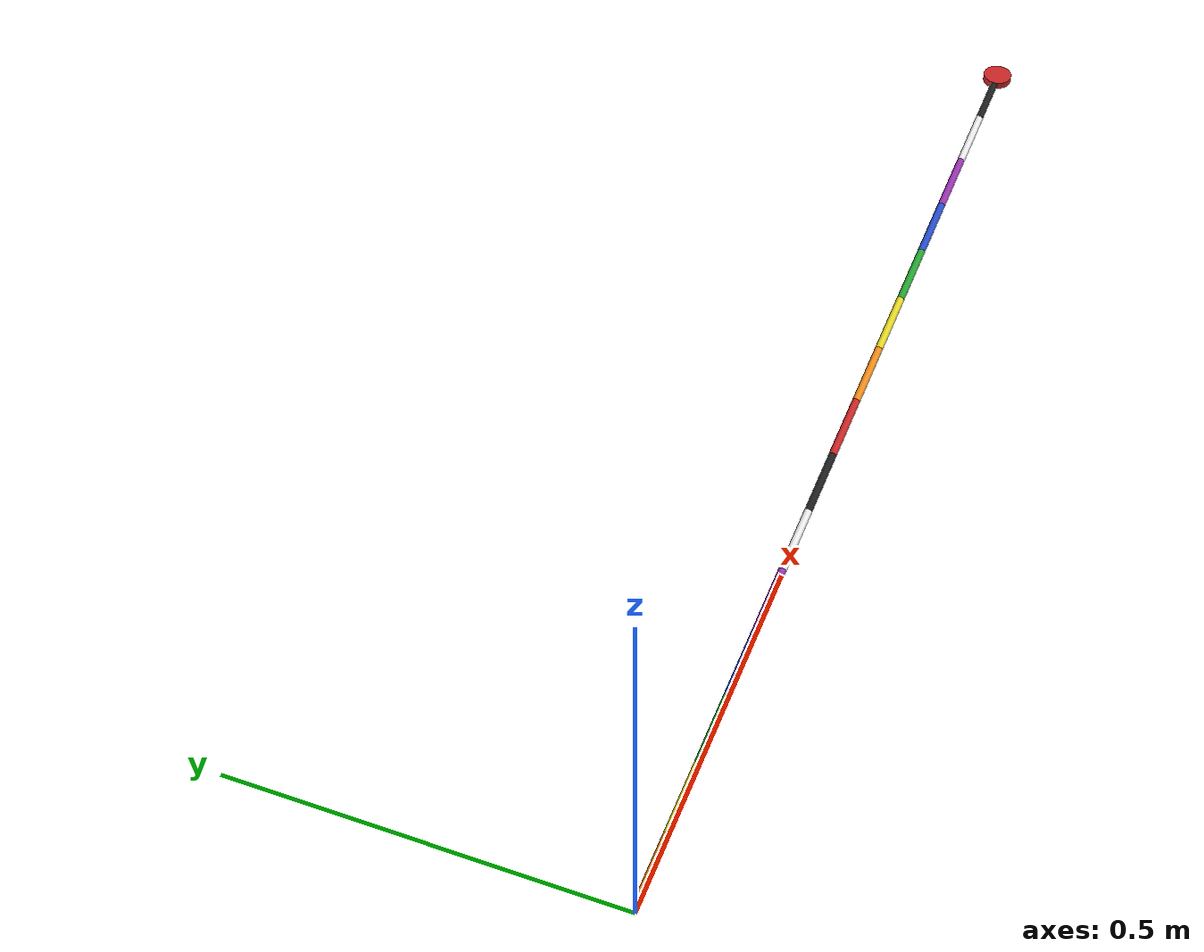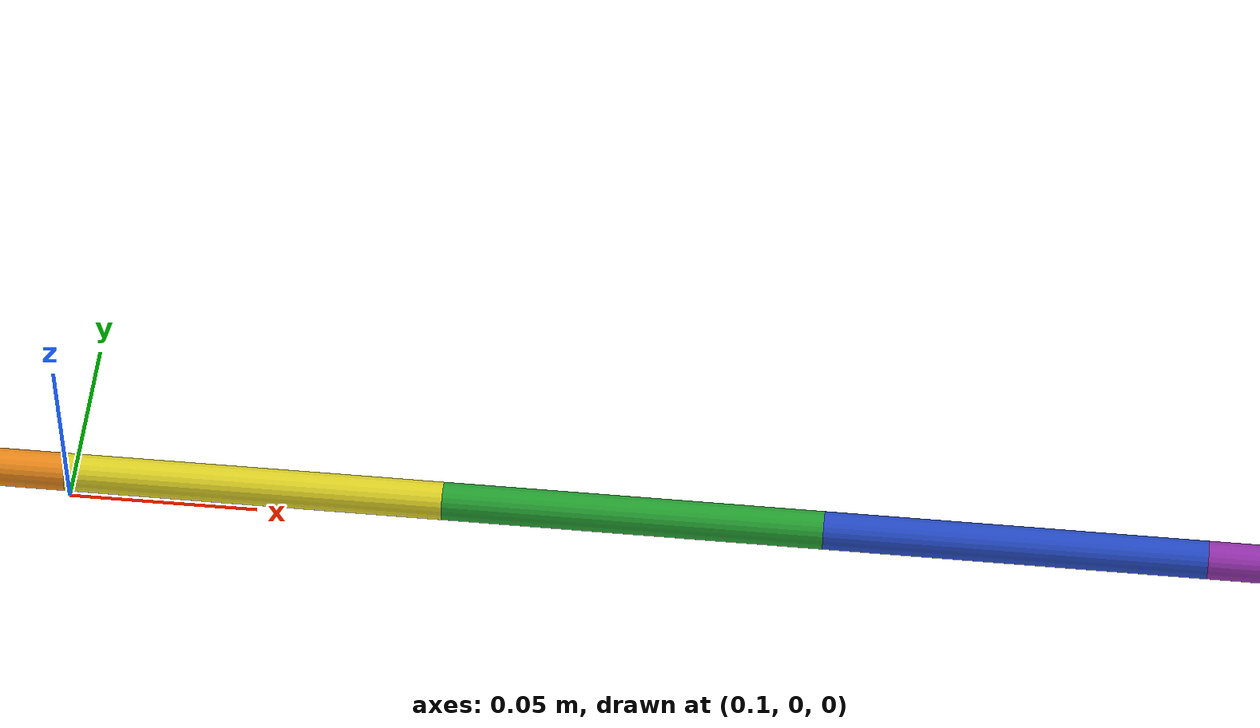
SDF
<sdf version="1.6">
    <model name="link_bot">
        <pose frame="">0 0 0.01 0 0 0</pose>

        <link name="link_1">
            <pose frame="">0.0 0 0 3.14159 -1.57079 3.14159</pose>
            <inertial>
                <pose frame="">0 0 -0.05 0 0 0</pose>
                <mass>0.03333333333333333</mass>
                <inertia>
                    <ixx>2.7986111111111115e-05</ixx>
                    <ixy>0</ixy>
                    <ixz>0</ixz>
                    <iyy>2.7986111111111115e-05</iyy>
                    <iyz>0</iyz>
                    <izz>4.1666666666666667e-07</izz>
                </inertia>
            </inertial>
            <collision name="link_1_collision">
                <pose frame="">0 0 -0.05 0 0 0</pose>
                <geometry>
                    <box>
                        <size>0.01 0.01 0.1</size>
                    </box>
                </geometry>
                <surface>
                    <friction>
                        <ode>
                            <mu>0.001</mu>
                            <mu2>0.001</mu2>
                        </ode>
                    </friction>
                </surface>
            </collision>
            <visual name="link_1_visual">
                <cast_shadows>0</cast_shadows>
                <pose frame="">0 0 -0.05 0 0 0</pose>
                <geometry>
                    <cylinder>
                        <length>0.1</length>
                        <radius>0.005</radius>
                    </cylinder>
                </geometry>
                <material>
                    <script>
                        <name>Gazebo/Orange</name>
                        <uri>file://media/materials/scripts/gazebo.material</uri>
                    </script>
                </material>
            </visual>
        </link>

        <link name="link_2">
            <pose frame="">0.1 0 0 3.14159 -1.57079 3.14159</pose>
            <inertial>
                <pose frame="">0 0 -0.05 0 0 0</pose>
                <mass>0.03333333333333333</mass>
                <inertia>
                    <ixx>2.7986111111111115e-05</ixx>
                    <ixy>0</ixy>
                    <ixz>0</ixz>
                    <iyy>2.7986111111111115e-05</iyy>
                    <iyz>0</iyz>
                    <izz>4.1666666666666667e-07</izz>
                </inertia>
            </inertial>
            <collision name="link_2_collision">
                <pose frame="">0 0 -0.05 0 0 0</pose>
                <geometry>
                    <box>
                        <size>0.01 0.01 0.1</size>
                    </box>
                </geometry>
                <surface>
                    <friction>
                        <ode>
                            <mu>0.001</mu>
                            <mu2>0.001</mu2>
                        </ode>
                    </friction>
                </surface>
            </collision>
            <visual name="link_2_visual">
                <cast_shadows>0</cast_shadows>
                <pose frame="">0 0 -0.05 0 0 0</pose>
                <geometry>
                    <cylinder>
                        <length>0.1</length>
                        <radius>0.005</radius>
                    </cylinder>
                </geometry>
                <material>
                    <script>
                        <name>Gazebo/Yellow</name>
                        <uri>file://media/materials/scripts/gazebo.material</uri>
                    </script>
                </material>
            </visual>
        </link>

        <link name="link_3">
            <pose frame="">0.2 0 0 3.14159 -1.57079 3.14159</pose>
            <inertial>
                <pose frame="">0 0 -0.05 0 0 0</pose>
                <mass>0.03333333333333333</mass>
                <inertia>
                    <ixx>2.7986111111111115e-05</ixx>
                    <ixy>0</ixy>
                    <ixz>0</ixz>
                    <iyy>2.7986111111111115e-05</iyy>
                    <iyz>0</iyz>
                    <izz>4.1666666666666667e-07</izz>
                </inertia>
            </inertial>
            <collision name="link_3_collision">
                <pose frame="">0 0 -0.05 0 0 0</pose>
                <geometry>
                    <box>
                        <size>0.01 0.01 0.1</size>
                    </box>
                </geometry>
                <surface>
                    <friction>
                        <ode>
                            <mu>0.001</mu>
                            <mu2>0.001</mu2>
                        </ode>
                    </friction>
                </surface>
            </collision>
            <visual name="link_3_visual">
                <cast_shadows>0</cast_shadows>
                <pose frame="">0 0 -0.05 0 0 0</pose>
                <geometry>
                    <cylinder>
                        <length>0.1</length>
                        <radius>0.005</radius>
                    </cylinder>
                </geometry>
                <material>
                    <script>
                        <name>Gazebo/Green</name>
                        <uri>file://media/materials/scripts/gazebo.material</uri>
                    </script>
                </material>
            </visual>
        </link>

        <link name="link_4">
            <pose frame="">0.30000000000000004 0 0 3.14159 -1.57079 3.14159</pose>
            <inertial>
                <pose frame="">0 0 -0.05 0 0 0</pose>
                <mass>0.03333333333333333</mass>
                <inertia>
                    <ixx>2.7986111111111115e-05</ixx>
                    <ixy>0</ixy>
                    <ixz>0</ixz>
                    <iyy>2.7986111111111115e-05</iyy>
                    <iyz>0</iyz>
                    <izz>4.1666666666666667e-07</izz>
                </inertia>
            </inertial>
            <collision name="link_4_collision">
                <pose frame="">0 0 -0.05 0 0 0</pose>
                <geometry>
                    <box>
                        <size>0.01 0.01 0.1</size>
                    </box>
                </geometry>
                <surface>
                    <friction>
                        <ode>
                            <mu>0.001</mu>
                            <mu2>0.001</mu2>
                        </ode>
                    </friction>
                </surface>
            </collision>
            <visual name="link_4_visual">
                <cast_shadows>0</cast_shadows>
                <pose frame="">0 0 -0.05 0 0 0</pose>
                <geometry>
                    <cylinder>
                        <length>0.1</length>
                        <radius>0.005</radius>
                    </cylinder>
                </geometry>
                <material>
                    <script>
                        <name>Gazebo/Blue</name>
                        <uri>file://media/materials/scripts/gazebo.material</uri>
                    </script>
                </material>
            </visual>
        </link>

        <link name="link_5">
            <pose frame="">0.4 0 0 3.14159 -1.57079 3.14159</pose>
            <inertial>
                <pose frame="">0 0 -0.05 0 0 0</pose>
                <mass>0.03333333333333333</mass>
                <inertia>
                    <ixx>2.7986111111111115e-05</ixx>
                    <ixy>0</ixy>
                    <ixz>0</ixz>
                    <iyy>2.7986111111111115e-05</iyy>
                    <iyz>0</iyz>
                    <izz>4.1666666666666667e-07</izz>
                </inertia>
            </inertial>
            <collision name="link_5_collision">
                <pose frame="">0 0 -0.05 0 0 0</pose>
                <geometry>
                    <box>
                        <size>0.01 0.01 0.1</size>
                    </box>
                </geometry>
                <surface>
                    <friction>
                        <ode>
                            <mu>0.001</mu>
                            <mu2>0.001</mu2>
                        </ode>
                    </friction>
                </surface>
            </collision>
            <visual name="link_5_visual">
                <cast_shadows>0</cast_shadows>
                <pose frame="">0 0 -0.05 0 0 0</pose>
                <geometry>
                    <cylinder>
                        <length>0.1</length>
                        <radius>0.005</radius>
                    </cylinder>
                </geometry>
                <material>
                    <script>
                        <name>Gazebo/Purple</name>
                        <uri>file://media/materials/scripts/gazebo.material</uri>
                    </script>
                </material>
            </visual>
        </link>

        <link name="link_6">
            <pose frame="">0.5 0 0 3.14159 -1.57079 3.14159</pose>
            <inertial>
                <pose frame="">0 0 -0.05 0 0 0</pose>
                <mass>0.03333333333333333</mass>
                <inertia>
                    <ixx>2.7986111111111115e-05</ixx>
                    <ixy>0</ixy>
                    <ixz>0</ixz>
                    <iyy>2.7986111111111115e-05</iyy>
                    <iyz>0</iyz>
                    <izz>4.1666666666666667e-07</izz>
                </inertia>
            </inertial>
            <collision name="link_6_collision">
                <pose frame="">0 0 -0.05 0 0 0</pose>
                <geometry>
                    <box>
                        <size>0.01 0.01 0.1</size>
                    </box>
                </geometry>
                <surface>
                    <friction>
                        <ode>
                            <mu>0.001</mu>
                            <mu2>0.001</mu2>
                        </ode>
                    </friction>
                </surface>
            </collision>
            <visual name="link_6_visual">
                <cast_shadows>0</cast_shadows>
                <pose frame="">0 0 -0.05 0 0 0</pose>
                <geometry>
                    <cylinder>
                        <length>0.1</length>
                        <radius>0.005</radius>
                    </cylinder>
                </geometry>
                <material>
                    <script>
                        <name>Gazebo/White</name>
                        <uri>file://media/materials/scripts/gazebo.material</uri>
                    </script>
                </material>
            </visual>
        </link>

        <link name="link_7">
            <pose frame="">0.6000000000000001 0 0 3.14159 -1.57079 3.14159</pose>
            <inertial>
                <pose frame="">0 0 -0.05 0 0 0</pose>
                <mass>0.03333333333333333</mass>
                <inertia>
                    <ixx>2.7986111111111115e-05</ixx>
                    <ixy>0</ixy>
                    <ixz>0</ixz>
                    <iyy>2.7986111111111115e-05</iyy>
                    <iyz>0</iyz>
                    <izz>4.1666666666666667e-07</izz>
                </inertia>
            </inertial>
            <collision name="link_7_collision">
                <pose frame="">0 0 -0.05 0 0 0</pose>
                <geometry>
                    <box>
                        <size>0.01 0.01 0.1</size>
                    </box>
                </geometry>
                <surface>
                    <friction>
                        <ode>
                            <mu>0.001</mu>
                            <mu2>0.001</mu2>
                        </ode>
                    </friction>
                </surface>
            </collision>
            <visual name="link_7_visual">
                <cast_shadows>0</cast_shadows>
                <pose frame="">0 0 -0.05 0 0 0</pose>
                <geometry>
                    <cylinder>
                        <length>0.1</length>
                        <radius>0.005</radius>
                    </cylinder>
                </geometry>
                <material>
                    <script>
                        <name>Gazebo/Black</name>
                        <uri>file://media/materials/scripts/gazebo.material</uri>
                    </script>
                </material>
            </visual>
        </link>

        <link name="link_8">
            <pose frame="">0.7000000000000001 0 0 3.14159 -1.57079 3.14159</pose>
            <inertial>
                <pose frame="">0 0 -0.05 0 0 0</pose>
                <mass>0.03333333333333333</mass>
                <inertia>
                    <ixx>2.7986111111111115e-05</ixx>
                    <ixy>0</ixy>
                    <ixz>0</ixz>
                    <iyy>2.7986111111111115e-05</iyy>
                    <iyz>0</iyz>
                    <izz>4.1666666666666667e-07</izz>
                </inertia>
            </inertial>
            <collision name="link_8_collision">
                <pose frame="">0 0 -0.05 0 0 0</pose>
                <geometry>
                    <box>
                        <size>0.01 0.01 0.1</size>
                    </box>
                </geometry>
                <surface>
                    <friction>
                        <ode>
                            <mu>0.001</mu>
                            <mu2>0.001</mu2>
                        </ode>
                    </friction>
                </surface>
            </collision>
            <visual name="link_8_visual">
                <cast_shadows>0</cast_shadows>
                <pose frame="">0 0 -0.05 0 0 0</pose>
                <geometry>
                    <cylinder>
                        <length>0.1</length>
                        <radius>0.005</radius>
                    </cylinder>
                </geometry>
                <material>
                    <script>
                        <name>Gazebo/Red</name>
                        <uri>file://media/materials/scripts/gazebo.material</uri>
                    </script>
                </material>
            </visual>
        </link>

        <link name="link_9">
            <pose frame="">0.8 0 0 3.14159 -1.57079 3.14159</pose>
            <inertial>
                <pose frame="">0 0 -0.05 0 0 0</pose>
                <mass>0.03333333333333333</mass>
                <inertia>
                    <ixx>2.7986111111111115e-05</ixx>
                    <ixy>0</ixy>
                    <ixz>0</ixz>
                    <iyy>2.7986111111111115e-05</iyy>
                    <iyz>0</iyz>
                    <izz>4.1666666666666667e-07</izz>
                </inertia>
            </inertial>
            <collision name="link_9_collision">
                <pose frame="">0 0 -0.05 0 0 0</pose>
                <geometry>
                    <box>
                        <size>0.01 0.01 0.1</size>
                    </box>
                </geometry>
                <surface>
                    <friction>
                        <ode>
                            <mu>0.001</mu>
                            <mu2>0.001</mu2>
                        </ode>
                    </friction>
                </surface>
            </collision>
            <visual name="link_9_visual">
                <cast_shadows>0</cast_shadows>
                <pose frame="">0 0 -0.05 0 0 0</pose>
                <geometry>
                    <cylinder>
                        <length>0.1</length>
                        <radius>0.005</radius>
                    </cylinder>
                </geometry>
                <material>
                    <script>
                        <name>Gazebo/Orange</name>
                        <uri>file://media/materials/scripts/gazebo.material</uri>
                    </script>
                </material>
            </visual>
        </link>

        <link name="link_10">
            <pose frame="">0.9 0 0 3.14159 -1.57079 3.14159</pose>
            <inertial>
                <pose frame="">0 0 -0.05 0 0 0</pose>
                <mass>0.03333333333333333</mass>
                <inertia>
                    <ixx>2.7986111111111115e-05</ixx>
                    <ixy>0</ixy>
                    <ixz>0</ixz>
                    <iyy>2.7986111111111115e-05</iyy>
                    <iyz>0</iyz>
                    <izz>4.1666666666666667e-07</izz>
                </inertia>
            </inertial>
            <collision name="link_10_collision">
                <pose frame="">0 0 -0.05 0 0 0</pose>
                <geometry>
                    <box>
                        <size>0.01 0.01 0.1</size>
                    </box>
                </geometry>
                <surface>
                    <friction>
                        <ode>
                            <mu>0.001</mu>
                            <mu2>0.001</mu2>
                        </ode>
                    </friction>
                </surface>
            </collision>
            <visual name="link_10_visual">
                <cast_shadows>0</cast_shadows>
                <pose frame="">0 0 -0.05 0 0 0</pose>
                <geometry>
                    <cylinder>
                        <length>0.1</length>
                        <radius>0.005</radius>
                    </cylinder>
                </geometry>
                <material>
                    <script>
                        <name>Gazebo/Yellow</name>
                        <uri>file://media/materials/scripts/gazebo.material</uri>
                    </script>
                </material>
            </visual>
        </link>

        <link name="link_11">
            <pose frame="">1.0 0 0 3.14159 -1.57079 3.14159</pose>
            <inertial>
                <pose frame="">0 0 -0.05 0 0 0</pose>
                <mass>0.03333333333333333</mass>
                <inertia>
                    <ixx>2.7986111111111115e-05</ixx>
                    <ixy>0</ixy>
                    <ixz>0</ixz>
                    <iyy>2.7986111111111115e-05</iyy>
                    <iyz>0</iyz>
                    <izz>4.1666666666666667e-07</izz>
                </inertia>
            </inertial>
            <collision name="link_11_collision">
                <pose frame="">0 0 -0.05 0 0 0</pose>
                <geometry>
                    <box>
                        <size>0.01 0.01 0.1</size>
                    </box>
                </geometry>
                <surface>
                    <friction>
                        <ode>
                            <mu>0.001</mu>
                            <mu2>0.001</mu2>
                        </ode>
                    </friction>
                </surface>
            </collision>
            <visual name="link_11_visual">
                <cast_shadows>0</cast_shadows>
                <pose frame="">0 0 -0.05 0 0 0</pose>
                <geometry>
                    <cylinder>
                        <length>0.1</length>
                        <radius>0.005</radius>
                    </cylinder>
                </geometry>
                <material>
                    <script>
                        <name>Gazebo/Green</name>
                        <uri>file://media/materials/scripts/gazebo.material</uri>
                    </script>
                </material>
            </visual>
        </link>

        <link name="link_12">
            <pose frame="">1.1 0 0 3.14159 -1.57079 3.14159</pose>
            <inertial>
                <pose frame="">0 0 -0.05 0 0 0</pose>
                <mass>0.03333333333333333</mass>
                <inertia>
                    <ixx>2.7986111111111115e-05</ixx>
                    <ixy>0</ixy>
                    <ixz>0</ixz>
                    <iyy>2.7986111111111115e-05</iyy>
                    <iyz>0</iyz>
                    <izz>4.1666666666666667e-07</izz>
                </inertia>
            </inertial>
            <collision name="link_12_collision">
                <pose frame="">0 0 -0.05 0 0 0</pose>
                <geometry>
                    <box>
                        <size>0.01 0.01 0.1</size>
                    </box>
                </geometry>
                <surface>
                    <friction>
                        <ode>
                            <mu>0.001</mu>
                            <mu2>0.001</mu2>
                        </ode>
                    </friction>
                </surface>
            </collision>
            <visual name="link_12_visual">
                <cast_shadows>0</cast_shadows>
                <pose frame="">0 0 -0.05 0 0 0</pose>
                <geometry>
                    <cylinder>
                        <length>0.1</length>
                        <radius>0.005</radius>
                    </cylinder>
                </geometry>
                <material>
                    <script>
                        <name>Gazebo/Blue</name>
                        <uri>file://media/materials/scripts/gazebo.material</uri>
                    </script>
                </material>
            </visual>
        </link>

        <link name="link_13">
            <pose frame="">1.2000000000000002 0 0 3.14159 -1.57079 3.14159</pose>
            <inertial>
                <pose frame="">0 0 -0.05 0 0 0</pose>
                <mass>0.03333333333333333</mass>
                <inertia>
                    <ixx>2.7986111111111115e-05</ixx>
                    <ixy>0</ixy>
                    <ixz>0</ixz>
                    <iyy>2.7986111111111115e-05</iyy>
                    <iyz>0</iyz>
                    <izz>4.1666666666666667e-07</izz>
                </inertia>
            </inertial>
            <collision name="link_13_collision">
                <pose frame="">0 0 -0.05 0 0 0</pose>
                <geometry>
                    <box>
                        <size>0.01 0.01 0.1</size>
                    </box>
                </geometry>
                <surface>
                    <friction>
                        <ode>
                            <mu>0.001</mu>
                            <mu2>0.001</mu2>
                        </ode>
                    </friction>
                </surface>
            </collision>
            <visual name="link_13_visual">
                <cast_shadows>0</cast_shadows>
                <pose frame="">0 0 -0.05 0 0 0</pose>
                <geometry>
                    <cylinder>
                        <length>0.1</length>
                        <radius>0.005</radius>
                    </cylinder>
                </geometry>
                <material>
                    <script>
                        <name>Gazebo/Purple</name>
                        <uri>file://media/materials/scripts/gazebo.material</uri>
                    </script>
                </material>
            </visual>
        </link>

        <link name="link_14">
            <pose frame="">1.3 0 0 3.14159 -1.57079 3.14159</pose>
            <inertial>
                <pose frame="">0 0 -0.05 0 0 0</pose>
                <mass>0.03333333333333333</mass>
                <inertia>
                    <ixx>2.7986111111111115e-05</ixx>
                    <ixy>0</ixy>
                    <ixz>0</ixz>
                    <iyy>2.7986111111111115e-05</iyy>
                    <iyz>0</iyz>
                    <izz>4.1666666666666667e-07</izz>
                </inertia>
            </inertial>
            <collision name="link_14_collision">
                <pose frame="">0 0 -0.05 0 0 0</pose>
                <geometry>
                    <box>
                        <size>0.01 0.01 0.1</size>
                    </box>
                </geometry>
                <surface>
                    <friction>
                        <ode>
                            <mu>0.001</mu>
                            <mu2>0.001</mu2>
                        </ode>
                    </friction>
                </surface>
            </collision>
            <visual name="link_14_visual">
                <cast_shadows>0</cast_shadows>
                <pose frame="">0 0 -0.05 0 0 0</pose>
                <geometry>
                    <cylinder>
                        <length>0.1</length>
                        <radius>0.005</radius>
                    </cylinder>
                </geometry>
                <material>
                    <script>
                        <name>Gazebo/White</name>
                        <uri>file://media/materials/scripts/gazebo.material</uri>
                    </script>
                </material>
            </visual>
        </link>

        <link name="link_15">
            <pose frame="">1.4000000000000001 0 0 3.14159 -1.57079 3.14159</pose>
            <inertial>
                <pose frame="">0 0 -0.05 0 0 0</pose>
                <mass>0.03333333333333333</mass>
                <inertia>
                    <ixx>2.7986111111111115e-05</ixx>
                    <ixy>0</ixy>
                    <ixz>0</ixz>
                    <iyy>2.7986111111111115e-05</iyy>
                    <iyz>0</iyz>
                    <izz>4.1666666666666667e-07</izz>
                </inertia>
            </inertial>
            <collision name="link_15_collision">
                <pose frame="">0 0 -0.05 0 0 0</pose>
                <geometry>
                    <box>
                        <size>0.01 0.01 0.1</size>
                    </box>
                </geometry>
                <surface>
                    <friction>
                        <ode>
                            <mu>0.001</mu>
                            <mu2>0.001</mu2>
                        </ode>
                    </friction>
                </surface>
            </collision>
            <visual name="link_15_visual">
                <cast_shadows>0</cast_shadows>
                <pose frame="">0 0 -0.05 0 0 0</pose>
                <geometry>
                    <cylinder>
                        <length>0.1</length>
                        <radius>0.005</radius>
                    </cylinder>
                </geometry>
                <material>
                    <script>
                        <name>Gazebo/Black</name>
                        <uri>file://media/materials/scripts/gazebo.material</uri>
                    </script>
                </material>
            </visual>
        </link>

        <joint name="joint_1" type="revolute">
            <parent>link_1</parent>
            <child>link_2</child>
            <pose>0 0 0 0 0</pose>
            <axis>
                <xyz>0 0 1</xyz>
                <dynamics>
                    <damping>0.002</damping>
                    <friction>0.015</friction>
                    <spring_reference>0</spring_reference>
                    <spring_stiffness>0.0001</spring_stiffness>
                </dynamics>
                <use_parent_model_frame>1</use_parent_model_frame>
            </axis>
        </joint>

        <joint name="joint_2" type="revolute">
            <parent>link_2</parent>
            <child>link_3</child>
            <pose>0 0 0 0 0</pose>
            <axis>
                <xyz>0 0 1</xyz>
                <dynamics>
                    <damping>0.002</damping>
                    <friction>0.015</friction>
                    <spring_reference>0</spring_reference>
                    <spring_stiffness>0.0001</spring_stiffness>
                </dynamics>
                <use_parent_model_frame>1</use_parent_model_frame>
            </axis>
        </joint>

        <joint name="joint_3" type="revolute">
            <parent>link_3</parent>
            <child>link_4</child>
            <pose>0 0 0 0 0</pose>
            <axis>
                <xyz>0 0 1</xyz>
                <dynamics>
                    <damping>0.002</damping>
                    <friction>0.015</friction>
                    <spring_reference>0</spring_reference>
                    <spring_stiffness>0.0001</spring_stiffness>
                </dynamics>
                <use_parent_model_frame>1</use_parent_model_frame>
            </axis>
        </joint>

        <joint name="joint_4" type="revolute">
            <parent>link_4</parent>
            <child>link_5</child>
            <pose>0 0 0 0 0</pose>
            <axis>
                <xyz>0 0 1</xyz>
                <dynamics>
                    <damping>0.002</damping>
                    <friction>0.015</friction>
                    <spring_reference>0</spring_reference>
                    <spring_stiffness>0.0001</spring_stiffness>
                </dynamics>
                <use_parent_model_frame>1</use_parent_model_frame>
            </axis>
        </joint>

        <joint name="joint_5" type="revolute">
            <parent>link_5</parent>
            <child>link_6</child>
            <pose>0 0 0 0 0</pose>
            <axis>
                <xyz>0 0 1</xyz>
                <dynamics>
                    <damping>0.002</damping>
                    <friction>0.015</friction>
                    <spring_reference>0</spring_reference>
                    <spring_stiffness>0.0001</spring_stiffness>
                </dynamics>
                <use_parent_model_frame>1</use_parent_model_frame>
            </axis>
        </joint>

        <joint name="joint_6" type="revolute">
            <parent>link_6</parent>
            <child>link_7</child>
            <pose>0 0 0 0 0</pose>
            <axis>
                <xyz>0 0 1</xyz>
                <dynamics>
                    <damping>0.002</damping>
                    <friction>0.015</friction>
                    <spring_reference>0</spring_reference>
                    <spring_stiffness>0.0001</spring_stiffness>
                </dynamics>
                <use_parent_model_frame>1</use_parent_model_frame>
            </axis>
        </joint>

        <joint name="joint_7" type="revolute">
            <parent>link_7</parent>
            <child>link_8</child>
            <pose>0 0 0 0 0</pose>
            <axis>
                <xyz>0 0 1</xyz>
                <dynamics>
                    <damping>0.002</damping>
                    <friction>0.015</friction>
                    <spring_reference>0</spring_reference>
                    <spring_stiffness>0.0001</spring_stiffness>
                </dynamics>
                <use_parent_model_frame>1</use_parent_model_frame>
            </axis>
        </joint>

        <joint name="joint_8" type="revolute">
            <parent>link_8</parent>
            <child>link_9</child>
            <pose>0 0 0 0 0</pose>
            <axis>
                <xyz>0 0 1</xyz>
                <dynamics>
                    <damping>0.002</damping>
                    <friction>0.015</friction>
                    <spring_reference>0</spring_reference>
                    <spring_stiffness>0.0001</spring_stiffness>
                </dynamics>
                <use_parent_model_frame>1</use_parent_model_frame>
            </axis>
        </joint>

        <joint name="joint_9" type="revolute">
            <parent>link_9</parent>
            <child>link_10</child>
            <pose>0 0 0 0 0</pose>
            <axis>
                <xyz>0 0 1</xyz>
                <dynamics>
                    <damping>0.002</damping>
                    <friction>0.015</friction>
                    <spring_reference>0</spring_reference>
                    <spring_stiffness>0.0001</spring_stiffness>
                </dynamics>
                <use_parent_model_frame>1</use_parent_model_frame>
            </axis>
        </joint>

        <joint name="joint_10" type="revolute">
            <parent>link_10</parent>
            <child>link_11</child>
            <pose>0 0 0 0 0</pose>
            <axis>
                <xyz>0 0 1</xyz>
                <dynamics>
                    <damping>0.002</damping>
                    <friction>0.015</friction>
                    <spring_reference>0</spring_reference>
                    <spring_stiffness>0.0001</spring_stiffness>
                </dynamics>
                <use_parent_model_frame>1</use_parent_model_frame>
            </axis>
        </joint>

        <joint name="joint_11" type="revolute">
            <parent>link_11</parent>
            <child>link_12</child>
            <pose>0 0 0 0 0</pose>
            <axis>
                <xyz>0 0 1</xyz>
                <dynamics>
                    <damping>0.002</damping>
                    <friction>0.015</friction>
                    <spring_reference>0</spring_reference>
                    <spring_stiffness>0.0001</spring_stiffness>
                </dynamics>
                <use_parent_model_frame>1</use_parent_model_frame>
            </axis>
        </joint>

        <joint name="joint_12" type="revolute">
            <parent>link_12</parent>
            <child>link_13</child>
            <pose>0 0 0 0 0</pose>
            <axis>
                <xyz>0 0 1</xyz>
                <dynamics>
                    <damping>0.002</damping>
                    <friction>0.015</friction>
                    <spring_reference>0</spring_reference>
                    <spring_stiffness>0.0001</spring_stiffness>
                </dynamics>
                <use_parent_model_frame>1</use_parent_model_frame>
            </axis>
        </joint>

        <joint name="joint_13" type="revolute">
            <parent>link_13</parent>
            <child>link_14</child>
            <pose>0 0 0 0 0</pose>
            <axis>
                <xyz>0 0 1</xyz>
                <dynamics>
                    <damping>0.002</damping>
                    <friction>0.015</friction>
                    <spring_reference>0</spring_reference>
                    <spring_stiffness>0.0001</spring_stiffness>
                </dynamics>
                <use_parent_model_frame>1</use_parent_model_frame>
            </axis>
        </joint>

        <joint name="joint_14" type="revolute">
            <parent>link_14</parent>
            <child>link_15</child>
            <pose>0 0 0 0 0</pose>
            <axis>
                <xyz>0 0 1</xyz>
                <dynamics>
                    <damping>0.002</damping>
                    <friction>0.015</friction>
                    <spring_reference>0</spring_reference>
                    <spring_stiffness>0.0001</spring_stiffness>
                </dynamics>
                <use_parent_model_frame>1</use_parent_model_frame>
            </axis>
        </joint>

        <link name='head'>
            <pose frame=''>1.5 0 0 0 0 0</pose>
            <inertial>
                <pose frame=''>0 0 0 0 0 0</pose>
                <mass>0.1</mass>
                <inertia>
                    <ixx>0.00002333</ixx>
                    <ixy>0</ixy>
                    <ixz>0</ixz>
                    <iyy>0.00002333</iyy>
                    <iyz>0</iyz>
                    <izz>0.00002</izz>
                </inertia>
            </inertial>
            <collision name='head_collision'>
                <pose frame=''>0 0 0 0 0 0</pose>
                <geometry>
                    <cylinder>
                        <radius>0.02</radius>
                        <length>0.04</length>
                    </cylinder>
                </geometry>
                <surface>
                    <friction>
                        <ode>
                            <mu>0.05</mu>
                            <mu2>0.05</mu2>
                        </ode>
                    </friction>
                </surface>
            </collision>
            <visual name='head_visual'>
                <cast_shadows>0</cast_shadows>
                <pose frame=''>0 0 0 0 0 0</pose>
                <geometry>
                    <cylinder>
                        <radius>0.02</radius>
                        <length>0.01</length>
                    </cylinder>
                </geometry>
                <material>
                    <script>
                        <name>Gazebo/Red</name>
                        <uri>file://media/materials/scripts/gazebo.material</uri>
                    </script>
                </material>
            </visual>
            <sensor name='head_contact' type='contact'>
                <contact>
                    <collision>head_collision</collision>
                    <topic>__default_topic__</topic>
                </contact>
            </sensor>
        </link>

        <joint name="head_joint" type="fixed">
            <parent>head</parent>
            <child>link_15</child>
            <pose>0 0 -0.1 0 0 0</pose>
            <axis>
                <xyz>0 0 1</xyz>
                <use_parent_model_frame>1</use_parent_model_frame>
                <limit>
                    <effort>10</effort>
                    <velocity>5</velocity>
                </limit>
                <dynamics>
                    <damping>0</damping>
                    <friction>0</friction>
                </dynamics>
            </axis>
            <physics>
                <ode>
                    <limit>
                        <cfm>0</cfm>
                        <erp>0.2</erp>
                    </limit>
                </ode>
            </physics>
        </joint>

        <plugin name='multi_link_bot_model_plugin' filename='libmulti_link_bot_model_plugin.so'>
            <kP_pos>50</kP_pos>
            <kI_pos>0.001</kI_pos>
            <kD_pos>0.0</kD_pos>
            <kP_vel>20.0</kP_vel>
            <kI_vel>0.0</kI_vel>
            <kD_vel>0.0</kD_vel>
            <max_force>1.0</max_force>
            <max_vel>0.15</max_vel>
            <max_vel_acc>0.01</max_vel_acc>
            <gripper1_link>head</gripper1_link>
            <num_links>0</num_links>
            <rope_length>1.5</rope_length>
        </plugin>

        <joint type='revolute' name='world_joint'>
            <parent>world</parent>
            <child>link_1</child>
            <axis>
                <xyz>1 0 0</xyz>
            </axis>
        </joint>
    </model>
</sdf>
